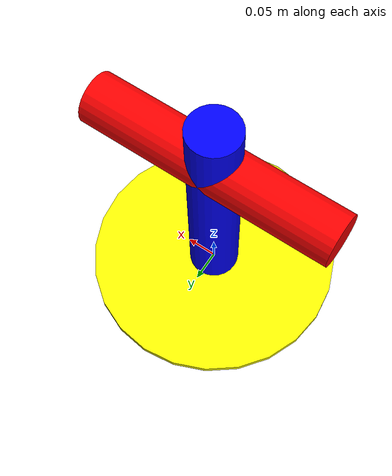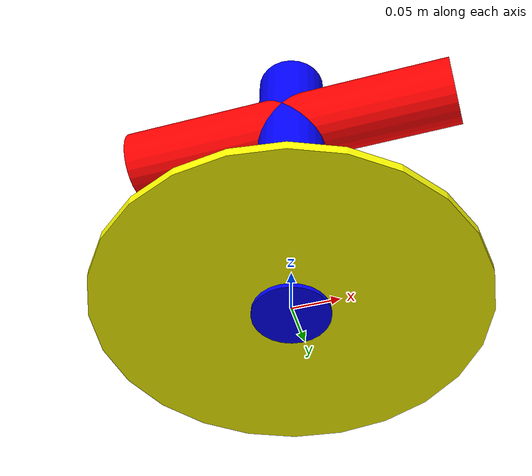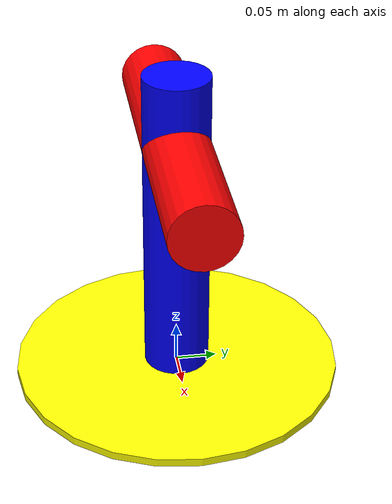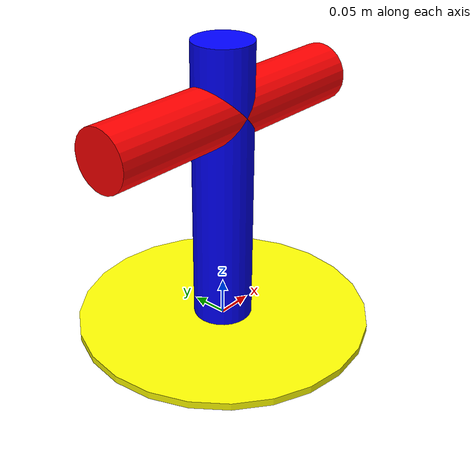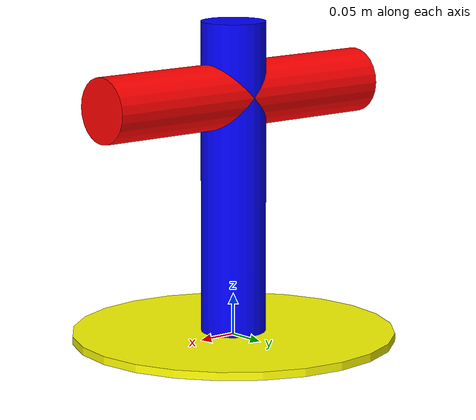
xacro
<?xml version="1.0"?>

<robot xmlns:xacro="http://www.ros.org/wiki/xacro"
    xmlns:sensor="http://playerstage.sourceforge.net/gazebo/xmlschema/#sensor"
    xmlns:controller="http://playerstage.sourceforge.net/gazebo/xmlschema/#controller"
    xmlns:interface="http://playerstage.sourceforge.net/gazebo/xmlschema/#interface"
    name="pan_tilt">

    <xacro:property name="base_link_length" value="0.01" />
    <xacro:property name="base_link_radius" value="0.2" />

    <xacro:property name="pan_link_length" value="0.4" />
    <xacro:property name="pan_link_radius" value="0.04" />

    <xacro:property name="tilt_link_length" value="0.4" />
    <xacro:property name="tilt_link_radius" value="0.04" />

    <xacro:macro name="inertial_matrix" params="mass">
        <inertial>
            <mass value="${mass}" />
            <inertia ixx="0.5" ixy="0.0" ixz="0.0"
                iyy="0.5" iyz="0.0"
                izz="0.5" />
        </inertial>
    </xacro:macro>

    <link name="base_link">

        <visual>
            <geometry>
                <cylinder length="${base_link_length}" radius="${base_link_radius}" />
            </geometry>
            <origin rpy="0 0 0" xyz="0 0 0" />
            <material name="yellow">
                <color rgba="1 1 0 1" />
            </material>
        </visual>

        <collision>
            <geometry>
                <cylinder length="${base_link_length+0.02}" radius="0.2" />
            </geometry>
            <origin rpy="0 0 0" xyz="0 0 0" />
        </collision>
        <xacro:inertial_matrix mass="1" />
    </link>

    <joint name="pan_joint" type="revolute">
        <parent link="base_link" />
        <child link="pan_link" />
        <origin xyz="0 0 0.1" />
        <axis xyz="0 0 1" />
        <limit effort="300" velocity="0.1" lower="-3.14" upper="3.14" />
        <dynamics damping="50" friction="1" />
    </joint>

    <link name="pan_link">
        <visual>
            <geometry>
                <cylinder length="${pan_link_length}" radius="${pan_link_radius}" />
            </geometry>
            <origin rpy="0 0 0" xyz="0 0 0.09" />
            <material name="red">
                <color rgba="0 0 1 1" />
            </material>
        </visual>
        <collision>
            <geometry>
                <cylinder length="${pan_link_length}" radius="${pan_link_radius+0.02}" />
            </geometry>
            <origin rpy="0 0 0" xyz="0 0 0.09" />
        </collision>
        <xacro:inertial_matrix mass="1" />
    </link>

    <joint name="tilt_joint" type="revolute">
        <parent link="pan_link" />
        <child link="tilt_link" />
        <origin xyz="0 0 0.2" />
        <axis xyz="0 1 0" />
        <limit effort="300" velocity="0.1" lower="-4.64" upper="-1.5" />
        <dynamics damping="50" friction="1" />
    </joint>

    <link name="tilt_link">
        <visual>
            <geometry>
                <cylinder length="${tilt_link_length}" radius="${tilt_link_radius}" />
            </geometry>
            <origin rpy="0 1.5 0" xyz="0 0 0" />
            <material name="green">
                <color rgba="1 0 0 1" />
            </material>
        </visual>
        <collision>
            <geometry>
                <cylinder length="${tilt_link_length}" radius="${tilt_link_radius+0.2}" />
            </geometry>
            <origin rpy="0 1.5 0" xyz="0 0 0" />
        </collision>
        <xacro:inertial_matrix mass="1" />
    </link>

</robot>
